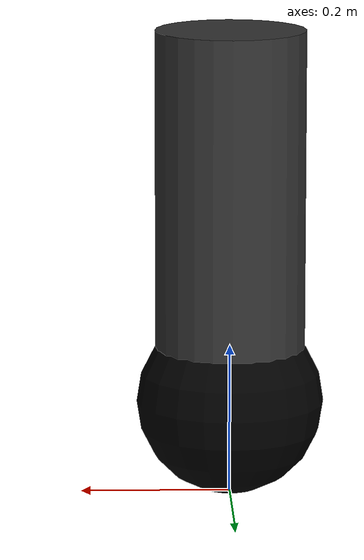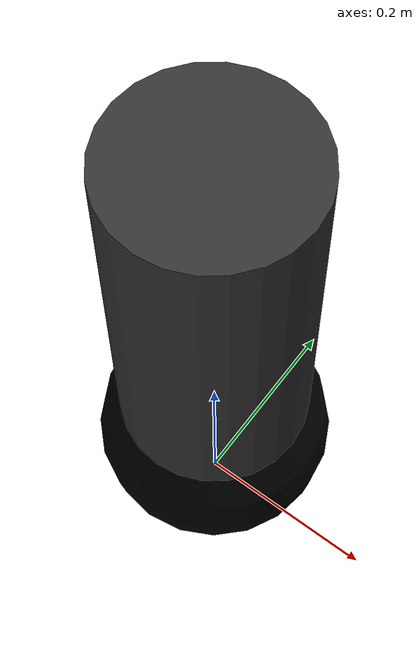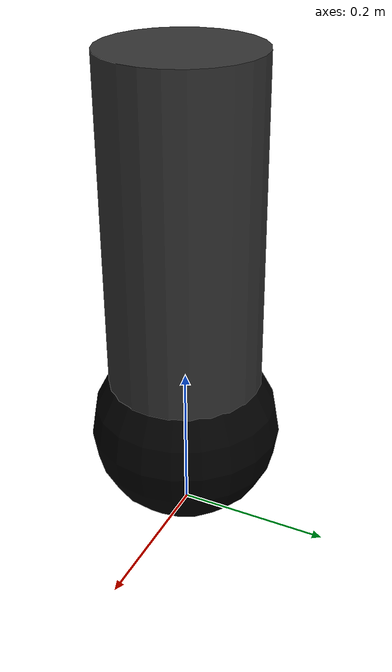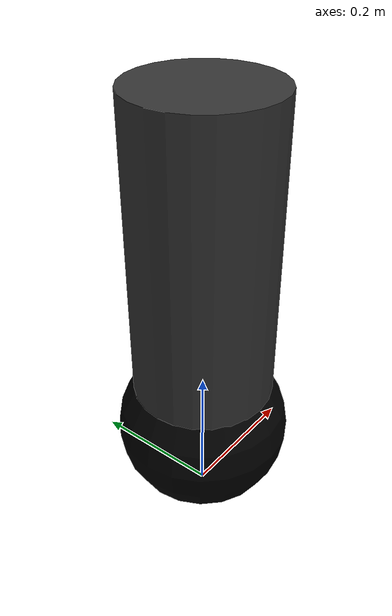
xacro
<?xml version="1.0"?>
<robot name="kugle" xmlns:xacro="http://www.ros.org/wiki/xacro">

<!-- Inspired from https://github.com/mindThomas/JetsonCar-Simulation/blob/master/jetsoncar_description/urdf/jetsoncar.xacro -->

	<xacro:include filename="$(find kugle_description)/urdf/parameters.xacro" />
	<xacro:include filename="$(find kugle_description)/urdf/functions.xacro" />
	<xacro:include filename="$(find kugle_description)/urdf/physical.xacro" />
	<xacro:include filename="$(find kugle_description)/urdf/joints.xacro" />
	<xacro:include filename="$(find kugle_description)/urdf/transmissions.xacro" />

	<!-- Link Gazebo and ROS - this has to happen as the last thing -->
	<xacro:include filename="$(find kugle_description)/urdf/gazebo.xacro" />
	<xacro:include filename="$(find kugle_description)/urdf/materials.xacro" />

	<!-- Base link is center of ball -->
	<link name="base_link"/>

	<!-- contact_point needs to be parent since actuation will affect this point -->

	<link name="ball">
		<inertial>
			<!-- Add a fictious mass and inertia to emulate a unit point mass - this allows the Torque inputs to work as Acceleration inputs -->
			<origin xyz="0 0 0" rpy="0 0 0" /> <!-- origin (0,0,0) is in the center of the box -->
			<mass value="0.9" />
			<inertia ixx="1.0"
					 ixy="0"
					 ixz="0"
					 iyy="1.0"
					 iyz="0"
					 izz="1.0"
			/>
		</inertial>
		<collision>
			<xacro:ball_collision/>
		</collision>
		<visual>
			<material name="black"/>
			<xacro:ball_geometry/>
		</visual>
	</link>

	<xacro:fixed_offset_joint parent="base_link" child="ball" offset="0 0 ${ball_radius}"/>

	<link name="robot">
		<inertial>
			<!-- Add a fictious mass and inertia to emulate a unit point mass - this allows the Torque inputs to work as Acceleration inputs -->
			<origin xyz="0 0 ${cylinder_height/2}" rpy="0 0 0" />
			<mass value="0.1" />
			<inertia ixx="0.0"
					 ixy="0"
					 ixz="0"
					 iyy="0.0"
					 iyz="0"
					 izz="0.0"
			/>
		</inertial>
		<collision>
			<xacro:robot_geometry/>
		</collision>
		<visual>
			<material name="grey"/>
			<xacro:robot_geometry/>
		</visual>
	</link>

	<joint name="base_to_robot" type="revolute">
		<parent link="base_link"/>
		<child link="robot"/>
		<origin xyz="0 0 ${ball_radius}" rpy="0 0 0" /> <!-- offset from parent to child, so with direction based in parent frame -->
		<axis xyz="0 0 1"/>
		<limit lower="0" upper="0" effort="10" velocity="100"/>
	</joint>
</robot>

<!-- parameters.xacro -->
<robot name="kugle" xmlns:xacro="http://www.ros.org/wiki/xacro">

	<!-- X axis direction is forward, Y axis direction is left -->

	<!-- Physical properties -->
	<xacro:property name="ball_radius" value="0.125" />
	<xacro:property name="ball_mass" value="0.500" />
	<xacro:property name="cylinder_radius" value="0.100" />
	<xacro:property name="cylinder_height" value="0.500" />
	<xacro:property name="cylinder_mass" value="0.500" />

</robot>

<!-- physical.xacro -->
<robot name="kugle" xmlns:xacro="http://www.ros.org/wiki/xacro">

	<!-- X axis direction is forward, Y axis direction is left -->
	<xacro:include filename="$(find kugle_description)/urdf/parameters.xacro" />

	<!-- Ball -->
	<xacro:macro name="ball_geometry"> <!-- Simulation visual appearance -->
		<origin xyz="0 0 0" rpy="0 0 0" /> <!-- origin (0,0,0) is in the center of the sphere -->
		<geometry>
			<sphere radius="${ball_radius}"/>
		</geometry>
	</xacro:macro>
	<xacro:macro name="ball_collision"> <!-- Physical properties - modelled as a cube to make it "balance" -->
		<origin xyz="0 0 0" rpy="0 0 0" /> <!-- origin (0,0,0) is in the center of the sphere -->
		<geometry>
			<box size="${2*ball_radius} ${2*ball_radius} ${2*ball_radius}" />
		</geometry>
	</xacro:macro>
	<xacro:macro name="ball_inertial"> <!-- Physical properties - modelled as a cube to make it "balance" -->
		<origin xyz="0 0 0" rpy="0 0 0" /> <!-- origin (0,0,0) is in the center of the box -->
		<xacro:box_inertial mass="${ball_mass}" length="${2*ball_radius}" width="${2*ball_radius}" height="${2*ball_radius}" />
	</xacro:macro>

	<!-- Robot cylinder -->
	<xacro:macro name="robot_geometry">
		<origin xyz="0 0 ${cylinder_height/2}" rpy="0 0 0" />
		<geometry>
			<cylinder length="${cylinder_height}" radius="${cylinder_radius}"/>
		</geometry>
	</xacro:macro>
	<xacro:macro name="robot_inertial">
		<origin xyz="0 0 ${cylinder_height/2}" rpy="0 0 0" />
		<xacro:cylinder_inertial mass="${cylinder_mass}" radius="${cylinder_radius}" length="${cylinder_height}" />
	</xacro:macro>

</robot>

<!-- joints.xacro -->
<robot name="kugle" xmlns:xacro="http://www.ros.org/wiki/xacro">

	<xacro:macro name="fixed_offset_joint" params="parent child offset">
		<joint name="${parent}_to_${child}" type="fixed">
			<parent link="${parent}"/>
			<child link="${child}"/>
			<origin xyz="${offset}" rpy="0 0 0" /> <!-- offset from parent to child, so with direction based in parent frame -->
		</joint>
	</xacro:macro>

	<xacro:macro name="fixed_offset_joint_rpy" params="parent child offset rpy">
		<joint name="${parent}_to_${child}" type="fixed">
			<parent link="${parent}"/>
			<child link="${child}"/>
			<origin xyz="${offset}" rpy="${rpy}" /> <!-- offset from parent to child, so with direction based in parent frame -->
		</joint>
	</xacro:macro>

	<xacro:macro name="dampener_joint" params="parent child offset">
		<joint name="${parent}_to_${child}" type="prismatic">
			<parent link="${parent}"/>
			<child link="${child}"/>
			<origin xyz="${offset}" rpy="0 0 0" /> <!-- offset from parent to child, so with direction based in parent frame -->
			<axis xyz="0 0 -1"/> <!-- suspension works up and down -->
			<limit lower="${susp_lower}" upper="${susp_upper}" effort="0" velocity="0"/>
			<dynamics damping="${susp_damping}" spring_stiffness="${susp_stiffness}" spring_reference="${susp_spring_center}"/>
			<physics>
				<ode>
					<implicit_spring_damper>0</implicit_spring_damper>
				</ode>
			</physics>
		</joint>
	</xacro:macro>

	<xacro:macro name="hinge_joint" params="parent child offset">
		<joint name="${child}_joint" type="revolute"> <!-- revolute is a joint with a range limited motion around its' axis -->
			<parent link="${parent}"/>
			<child link="${child}"/>
			<origin xyz="${offset}" rpy="0 0 0" /> <!-- offset from parent to child, so with direction based in parent frame -->
			<axis xyz="0 0 1"/>
			<limit lower="-${steering_wheel_angle_limit}" upper="${steering_wheel_angle_limit}" effort="10" velocity="100"/> <!-- effort is similar to torque/acceleration -->
			<!-- friction - The physical static friction. For prismatic joints, the units are Newtons. For revolving joints, the units are Newton meters. -->
			<!-- damping - The physical damping value. For prismatic joints, the units are Newton seconds per meter. For revolving joints, Newton meter secons per radian. -->
		</joint>
	</xacro:macro>

	<xacro:macro name="wheel_joint" params="parent child offset">
		<joint name="${child}_joint" type="continuous"> <!-- continuous is a joint of continous motion around its' axis -->
			<parent link="${parent}"/>
			<child link="${child}"/>
			<origin xyz="${offset}" rpy="0 0 0" /> <!-- offset from parent to child, so with direction based in parent frame -->
			<axis xyz="0 1 0"/>
			<!-- friction - The physical static friction. For prismatic joints, the units are Newtons. For revolving joints, the units are Newton meters. -->
			<!-- damping - The physical damping value. For prismatic joints, the units are Newton seconds per meter. For revolving joints, Newton meter secons per radian. -->
			<limit effort="10" velocity="100"/>
		</joint>
	</xacro:macro>

</robot>

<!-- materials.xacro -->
<robot name="kugle" xmlns:xacro="http://www.ros.org/wiki/xacro">

<material name="black">
  <color rgba="0.0 0.0 0.0 1.0"/>
</material>

<material name="blue">
  <color rgba="0.0 0.0 0.8 1.0"/>
</material>

<material name="green">
  <color rgba="0.0 0.8 0.0 1.0"/>
</material>

<material name="grey">
  <color rgba="0.2 0.2 0.2 1.0"/>
</material>

<material name="orange">
  <color rgba="${255/255} ${108/255} ${10/255} 1.0"/>
</material>

<material name="brown">
  <color rgba="${222/255} ${207/255} ${195/255} 1.0"/>
</material>

<material name="red">
  <color rgba="0.8 0.0 0.0 1.0"/>
</material>

<material name="white">
  <color rgba="1.0 1.0 1.0 1.0"/>
</material>

<material name="acrylic">
  <color rgba="1.0 1.0 1.0 0.4"/>
</material>

</robot>
